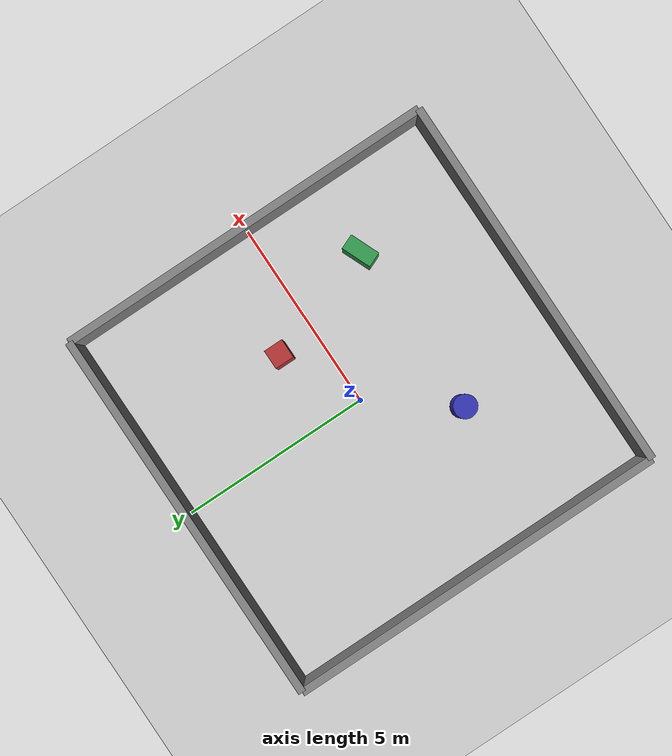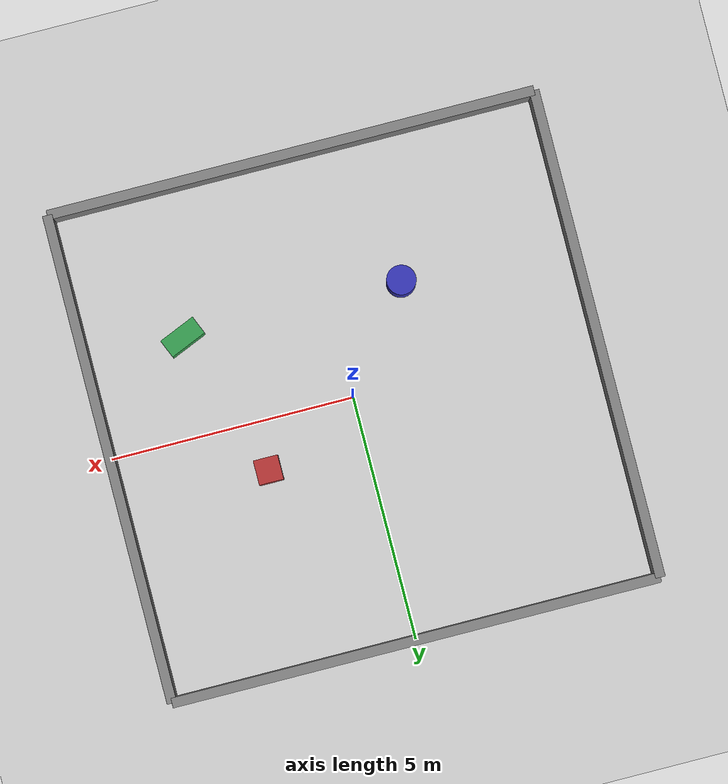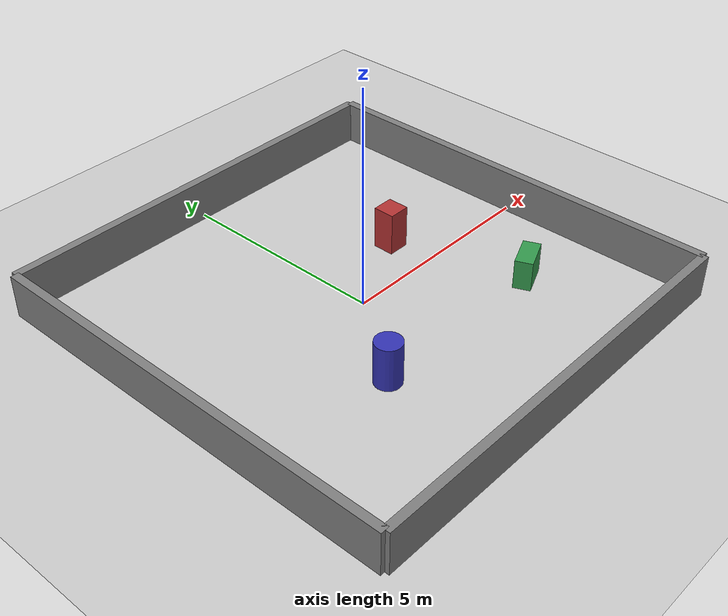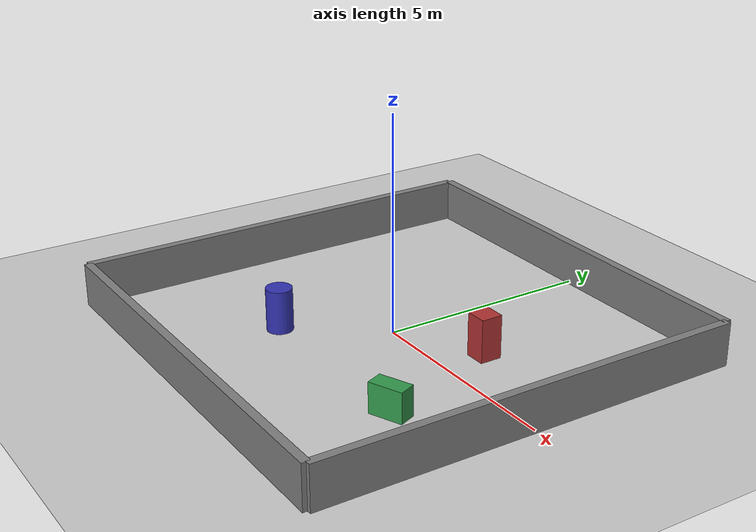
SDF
<?xml version="1.0" ?>
<sdf version="1.8">
  <world name="go2_rl">
    <physics name="1ms" type="ode">
      <max_step_size>0.005</max_step_size>
      <real_time_factor>1.0</real_time_factor>
    </physics>

    <plugin filename="gz-sim-physics-system" name="gz::sim::systems::Physics"/>
    <plugin filename="gz-sim-user-commands-system" name="gz::sim::systems::UserCommands"/>
    <plugin filename="gz-sim-scene-broadcaster-system" name="gz::sim::systems::SceneBroadcaster"/>
    <plugin filename="gz-sim-contact-system" name="gz::sim::systems::Contact"/>
    <plugin filename="gz-sim-imu-system" name="gz::sim::systems::Imu"/>
    <plugin filename="gz-sim-sensors-system" name="gz::sim::systems::Sensors">
      <render_engine>ogre2</render_engine>
    </plugin>

    <scene>
      <ambient>0.6 0.6 0.6 1</ambient>
      <background>0.75 0.75 0.78 1</background>
      <shadows>false</shadows>
    </scene>

    <light type="directional" name="sun">
      <cast_shadows>false</cast_shadows>
      <pose>0 0 10 0 0 0</pose>
      <diffuse>0.8 0.8 0.8 1</diffuse>
      <specular>0.2 0.2 0.2 1</specular>
      <direction>-0.5 0.1 -0.9</direction>
    </light>

    <model name="ground_plane">
      <static>true</static>
      <link name="link">
        <collision name="collision">
          <geometry><plane><normal>0 0 1</normal><size>100 100</size></plane></geometry>
          <surface><friction><ode><mu>1</mu><mu2>1</mu2></ode></friction></surface>
        </collision>
        <visual name="visual">
          <geometry><plane><normal>0 0 1</normal><size>100 100</size></plane></geometry>
          <material><ambient>0.8 0.8 0.8 1</ambient><diffuse>0.8 0.8 0.8 1</diffuse></material>
        </visual>
      </link>
    </model>

    <model name="obstacle_box_1">
      <static>true</static>
      <pose>2 1 0.5 0 0 0</pose>
      <link name="link">
        <collision name="collision"><geometry><box><size>0.5 0.5 1</size></box></geometry></collision>
        <visual name="visual">
          <geometry><box><size>0.5 0.5 1</size></box></geometry>
          <material><ambient>0.7 0.2 0.2 1</ambient><diffuse>0.7 0.2 0.2 1</diffuse></material>
        </visual>
      </link>
    </model>

    <model name="obstacle_cylinder_1">
      <static>true</static>
      <pose>-1.5 -2 0.5 0 0 0</pose>
      <link name="link">
        <collision name="collision"><geometry><cylinder><radius>0.3</radius><length>1</length></cylinder></geometry></collision>
        <visual name="visual">
          <geometry><cylinder><radius>0.3</radius><length>1</length></cylinder></geometry>
          <material><ambient>0.2 0.2 0.7 1</ambient><diffuse>0.2 0.2 0.7 1</diffuse></material>
        </visual>
      </link>
    </model>

    <model name="obstacle_box_2">
      <static>true</static>
      <pose>3 -2 0.35 0 0 0.4</pose>
      <link name="link">
        <collision name="collision"><geometry><box><size>0.8 0.4 0.7</size></box></geometry></collision>
        <visual name="visual">
          <geometry><box><size>0.8 0.4 0.7</size></box></geometry>
          <material><ambient>0.2 0.6 0.3 1</ambient><diffuse>0.2 0.6 0.3 1</diffuse></material>
        </visual>
      </link>
    </model>

    <model name="wall_north">
      <static>true</static>
      <pose>0 5 0.5 0 0 0</pose>
      <link name="link">
        <collision name="collision"><geometry><box><size>10 0.2 1</size></box></geometry></collision>
        <visual name="visual">
          <geometry><box><size>10 0.2 1</size></box></geometry>
          <material><ambient>0.5 0.5 0.5 1</ambient><diffuse>0.5 0.5 0.5 1</diffuse></material>
        </visual>
      </link>
    </model>
    <model name="wall_south">
      <static>true</static>
      <pose>0 -5 0.5 0 0 0</pose>
      <link name="link">
        <collision name="collision"><geometry><box><size>10 0.2 1</size></box></geometry></collision>
        <visual name="visual">
          <geometry><box><size>10 0.2 1</size></box></geometry>
          <material><ambient>0.5 0.5 0.5 1</ambient><diffuse>0.5 0.5 0.5 1</diffuse></material>
        </visual>
      </link>
    </model>
    <model name="wall_east">
      <static>true</static>
      <pose>5 0 0.5 0 0 0</pose>
      <link name="link">
        <collision name="collision"><geometry><box><size>0.2 10 1</size></box></geometry></collision>
        <visual name="visual">
          <geometry><box><size>0.2 10 1</size></box></geometry>
          <material><ambient>0.5 0.5 0.5 1</ambient><diffuse>0.5 0.5 0.5 1</diffuse></material>
        </visual>
      </link>
    </model>
    <model name="wall_west">
      <static>true</static>
      <pose>-5 0 0.5 0 0 0</pose>
      <link name="link">
        <collision name="collision"><geometry><box><size>0.2 10 1</size></box></geometry></collision>
        <visual name="visual">
          <geometry><box><size>0.2 10 1</size></box></geometry>
          <material><ambient>0.5 0.5 0.5 1</ambient><diffuse>0.5 0.5 0.5 1</diffuse></material>
        </visual>
      </link>
    </model>
  </world>
</sdf>
